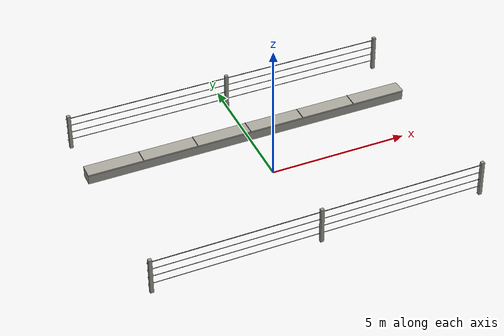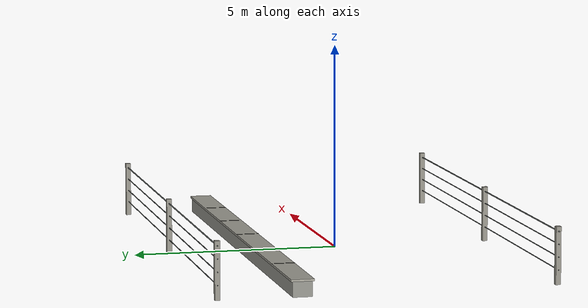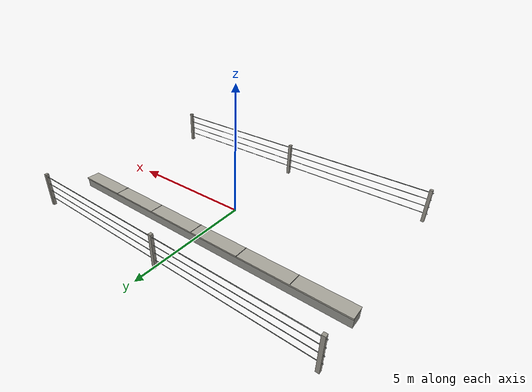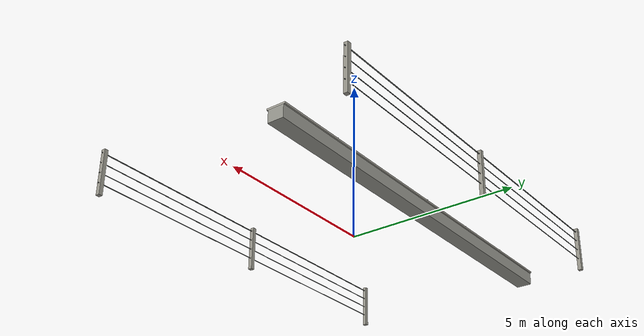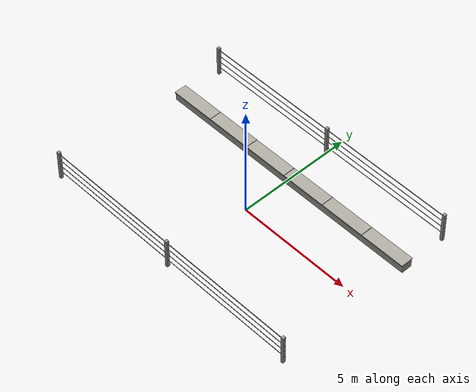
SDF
<?xml version="1.0"?>
<sdf version="1.9">
  <model name="railside_infrastructure_12m">
    <static>true</static>
    <plugin filename="gz-sim-label-system" name="gz::sim::systems::Label"><label>40</label></plugin>
    <link name="infrastructure">
      <!-- Precast cable trough on the catenary side -->
      <collision name="trough_collision"><pose>0 2.20 0.18 0 0 0</pose><geometry><box><size>12 0.46 0.36</size></box></geometry></collision>
      <visual name="trough_body"><pose>0 2.20 0.18 0 0 0</pose><geometry><box><size>12 0.46 0.36</size></box></geometry><material><ambient>0.40 0.40 0.38 1</ambient><diffuse>0.58 0.58 0.55 1</diffuse></material></visual>
      <visual name="trough_lid"><pose>0 2.20 0.385 0 0 0</pose><geometry><box><size>12 0.54 0.05</size></box></geometry><material><diffuse>0.66 0.65 0.61 1</diffuse></material></visual>
      <visual name="joint_m4"><pose>-4 2.20 0.413 0 0 0</pose><geometry><box><size>0.018 0.55 0.008</size></box></geometry><material><diffuse>0.15 0.15 0.14 1</diffuse></material></visual>
      <visual name="joint_m2"><pose>-2 2.20 0.413 0 0 0</pose><geometry><box><size>0.018 0.55 0.008</size></box></geometry><material><diffuse>0.15 0.15 0.14 1</diffuse></material></visual>
      <visual name="joint_00"><pose>0 2.20 0.413 0 0 0</pose><geometry><box><size>0.018 0.55 0.008</size></box></geometry><material><diffuse>0.15 0.15 0.14 1</diffuse></material></visual>
      <visual name="joint_p2"><pose>2 2.20 0.413 0 0 0</pose><geometry><box><size>0.018 0.55 0.008</size></box></geometry><material><diffuse>0.15 0.15 0.14 1</diffuse></material></visual>
      <visual name="joint_p4"><pose>4 2.20 0.413 0 0 0</pose><geometry><box><size>0.018 0.55 0.008</size></box></geometry><material><diffuse>0.15 0.15 0.14 1</diffuse></material></visual>

      <!-- Four-strand galvanised rail boundary fence -->
      <visual name="fence_n1"><pose>0 4.15 0.35 0 1.570796 0</pose><geometry><cylinder><radius>0.010</radius><length>12</length></cylinder></geometry><material><diffuse>0.38 0.40 0.39 1</diffuse></material></visual>
      <visual name="fence_n2"><pose>0 4.15 0.65 0 1.570796 0</pose><geometry><cylinder><radius>0.010</radius><length>12</length></cylinder></geometry><material><diffuse>0.38 0.40 0.39 1</diffuse></material></visual>
      <visual name="fence_n3"><pose>0 4.15 0.95 0 1.570796 0</pose><geometry><cylinder><radius>0.010</radius><length>12</length></cylinder></geometry><material><diffuse>0.38 0.40 0.39 1</diffuse></material></visual>
      <visual name="fence_n4"><pose>0 4.15 1.25 0 1.570796 0</pose><geometry><cylinder><radius>0.014</radius><length>12</length></cylinder></geometry><material><diffuse>0.38 0.40 0.39 1</diffuse></material></visual>
      <visual name="fence_s1"><pose>0 -3.85 0.35 0 1.570796 0</pose><geometry><cylinder><radius>0.010</radius><length>12</length></cylinder></geometry><material><diffuse>0.38 0.40 0.39 1</diffuse></material></visual>
      <visual name="fence_s2"><pose>0 -3.85 0.65 0 1.570796 0</pose><geometry><cylinder><radius>0.010</radius><length>12</length></cylinder></geometry><material><diffuse>0.38 0.40 0.39 1</diffuse></material></visual>
      <visual name="fence_s3"><pose>0 -3.85 0.95 0 1.570796 0</pose><geometry><cylinder><radius>0.010</radius><length>12</length></cylinder></geometry><material><diffuse>0.38 0.40 0.39 1</diffuse></material></visual>
      <visual name="fence_s4"><pose>0 -3.85 1.25 0 1.570796 0</pose><geometry><cylinder><radius>0.014</radius><length>12</length></cylinder></geometry><material><diffuse>0.38 0.40 0.39 1</diffuse></material></visual>
      <visual name="post_n_m"><pose>-5.9 4.15 0.68 0 0 0</pose><geometry><box><size>0.12 0.12 1.36</size></box></geometry><material><diffuse>0.59 0.58 0.54 1</diffuse></material></visual>
      <visual name="post_n_0"><pose>0 4.15 0.68 0 0 0</pose><geometry><box><size>0.12 0.12 1.36</size></box></geometry><material><diffuse>0.59 0.58 0.54 1</diffuse></material></visual>
      <visual name="post_n_p"><pose>5.9 4.15 0.68 0 0 0</pose><geometry><box><size>0.12 0.12 1.36</size></box></geometry><material><diffuse>0.59 0.58 0.54 1</diffuse></material></visual>
      <visual name="post_s_m"><pose>-5.9 -3.85 0.68 0 0 0</pose><geometry><box><size>0.12 0.12 1.36</size></box></geometry><material><diffuse>0.59 0.58 0.54 1</diffuse></material></visual>
      <visual name="post_s_0"><pose>0 -3.85 0.68 0 0 0</pose><geometry><box><size>0.12 0.12 1.36</size></box></geometry><material><diffuse>0.59 0.58 0.54 1</diffuse></material></visual>
      <visual name="post_s_p"><pose>5.9 -3.85 0.68 0 0 0</pose><geometry><box><size>0.12 0.12 1.36</size></box></geometry><material><diffuse>0.59 0.58 0.54 1</diffuse></material></visual>
    </link>
  </model>
</sdf>
